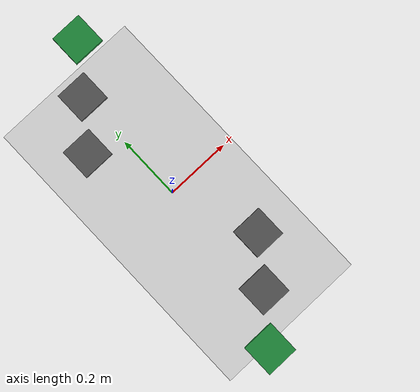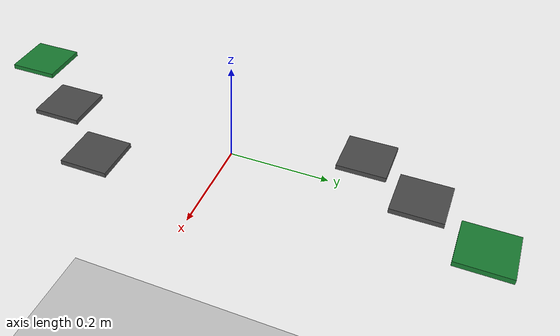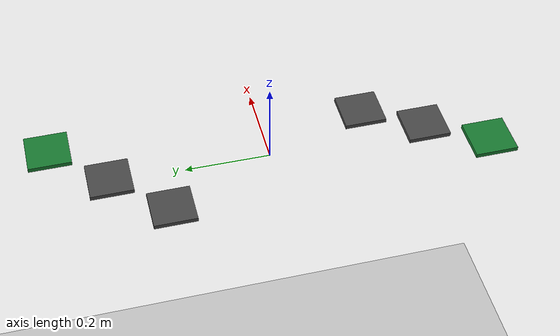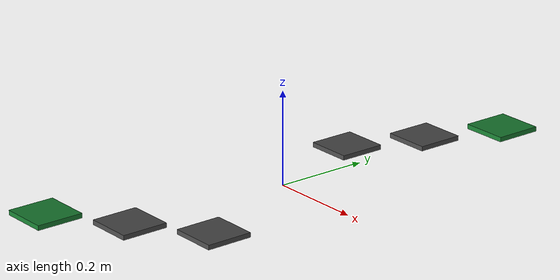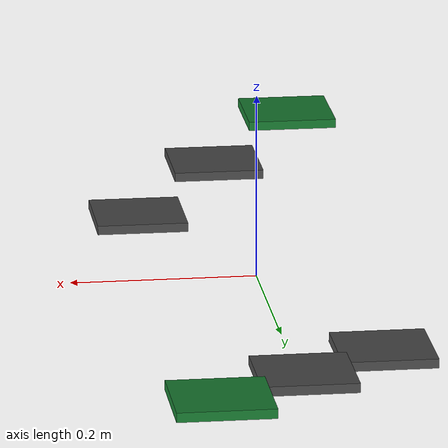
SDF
<?xml version="1.0" ?>
<sdf version="1.4">
  <world name="default">
    <include>
      <uri>model://sun</uri>
    </include>
    <gui>
        <camera name="user_camera">
          <pose>.8 -.2 .9 0 .77 2.86</pose>
        </camera>
    </gui>

    <model name='ground_plane'>
      <pose>0 0 -1 0 0 0</pose>
       <static>1</static>
       <link name='link'>
         <collision name='collision'>
           <geometry>
             <plane>
               <normal>0 0 1</normal>
               <size>100 100</size>
             </plane>
           </geometry>
           <surface>
             <contact>
               <collide_bitmask>65535</collide_bitmask>
               <ode/>
             </contact>
             <friction>
               <ode>
                 <mu>1</mu>
                 <mu2>1</mu2>
               </ode>
               <torsional>
                 <ode/>
               </torsional>
             </friction>
             <bounce/>
           </surface>
           <max_contacts>10</max_contacts>
         </collision>
         <visual name='visual'>
           <cast_shadows>0</cast_shadows>
           <geometry>
             <plane>
               <normal>0 0 1</normal>
               <size>100 100</size>
             </plane>
           </geometry>
           <material>
             <script>
               <uri>file://media/materials/scripts/gazebo.material</uri>
               <name>Gazebo/Grey</name>
             </script>
           </material>
         </visual>
         <self_collide>0</self_collide>
         <enable_wind>0</enable_wind>
         <kinematic>0</kinematic>
       </link>
     </model>

     <model name='obstacles'>
       <link name='obstacle_0'>
         <pose frame=''>0 0 0 0 -0 0</pose>
         <inertial>
           <pose frame=''>0 0 0 0 -0 0</pose>
           <mass>0.3</mass>
           <inertia>
             <ixx>0.001</ixx>
             <ixy>0</ixy>
             <ixz>0</ixz>
             <iyy>0.001</iyy>
             <iyz>0</iyz>
             <izz>0.001</izz>
           </inertia>
         </inertial>
         <gravity>1</gravity>
         <velocity_decay/>
         <self_collide>0</self_collide>
         <enable_wind>0</enable_wind>
         <kinematic>0</kinematic>
         <visual name='obstacle_0_visual'>
           <pose frame=''>-0.1 0.25 -0.005 0 -0 0</pose>
           <geometry>
             <box>
               <size>0.1 0.1 0.01</size>
             </box>
           </geometry>
           <material>
             <script>
               <name>Gazebo/DarkGrey</name>
               <uri>file://media/materials/scripts/gazebo.material</uri>
             </script>
           </material>
           <transparency>0</transparency>
           <cast_shadows>1</cast_shadows>
         </visual>
         <collision name='obstacle_0_collision'>
           <laser_retro>0</laser_retro>
           <max_contacts>10</max_contacts>
           <pose frame=''>-0.1 0.25 -0.005 0 -0 0</pose>
           <geometry>
             <box>
               <size>0.1 0.1 0.01</size>
             </box>
           </geometry>
           <surface>
             <friction>
               <ode>
                 <mu>1</mu>
                 <mu2>1</mu2>
                 <fdir1>0 0 0</fdir1>
                 <slip1>0</slip1>
                 <slip2>0</slip2>
               </ode>
               <torsional>
                 <coefficient>1</coefficient>
                 <patch_radius>0</patch_radius>
                 <surface_radius>0</surface_radius>
                 <use_patch_radius>1</use_patch_radius>
                 <ode>
                   <slip>0</slip>
                 </ode>
               </torsional>
             </friction>
             <bounce>
               <restitution_coefficient>0</restitution_coefficient>
               <threshold>1e+06</threshold>
             </bounce>
             <contact>
               <collide_without_contact>0</collide_without_contact>
               <collide_without_contact_bitmask>1</collide_without_contact_bitmask>
               <collide_bitmask>1</collide_bitmask>
               <ode>
                 <soft_cfm>0</soft_cfm>
                 <soft_erp>0.2</soft_erp>
                 <kp>1e+13</kp>
                 <kd>1</kd>
                 <max_vel>0.01</max_vel>
                 <min_depth>0</min_depth>
               </ode>
               <bullet>
                 <split_impulse>1</split_impulse>
                 <split_impulse_penetration_threshold>-0.01</split_impulse_penetration_threshold>
                 <soft_cfm>0</soft_cfm>
                 <soft_erp>0.2</soft_erp>
                 <kp>1e+13</kp>
                 <kd>1</kd>
               </bullet>
             </contact>
           </surface>
         </collision>
       </link>
       <link name='obstacle_1'>
         <pose frame=''>0 0 0 0 -0 0</pose>
         <inertial>
           <pose frame=''>0 0 0 0 -0 0</pose>
           <mass>0.3</mass>
           <inertia>
             <ixx>0.001</ixx>
             <ixy>0</ixy>
             <ixz>0</ixz>
             <iyy>0.001</iyy>
             <iyz>0</iyz>
             <izz>0.001</izz>
           </inertia>
         </inertial>
         <gravity>1</gravity>
         <velocity_decay/>
         <self_collide>0</self_collide>
         <enable_wind>0</enable_wind>
         <kinematic>0</kinematic>
         <visual name='obstacle_1_visual'>
           <pose frame=''>0 0.375 0.015 0 -0 0</pose>
           <geometry>
             <box>
               <size>0.1 0.1 0.01</size>
             </box>
           </geometry>
           <material>
             <script>
               <name>Gazebo/DarkGrey</name>
               <uri>file://media/materials/scripts/gazebo.material</uri>
             </script>
           </material>
           <transparency>0</transparency>
           <cast_shadows>1</cast_shadows>
         </visual>
         <collision name='obstacle_1_collision'>
           <laser_retro>0</laser_retro>
           <max_contacts>10</max_contacts>
           <pose frame=''>0 0.375 0.015 0 -0 0</pose>
           <geometry>
             <box>
               <size>0.1 0.1 0.01</size>
             </box>
           </geometry>
           <surface>
             <friction>
               <ode>
                 <mu>1</mu>
                 <mu2>1</mu2>
                 <fdir1>0 0 0</fdir1>
                 <slip1>0</slip1>
                 <slip2>0</slip2>
               </ode>
               <torsional>
                 <coefficient>1</coefficient>
                 <patch_radius>0</patch_radius>
                 <surface_radius>0</surface_radius>
                 <use_patch_radius>1</use_patch_radius>
                 <ode>
                   <slip>0</slip>
                 </ode>
               </torsional>
             </friction>
             <bounce>
               <restitution_coefficient>0</restitution_coefficient>
               <threshold>1e+06</threshold>
             </bounce>
             <contact>
               <collide_without_contact>0</collide_without_contact>
               <collide_without_contact_bitmask>1</collide_without_contact_bitmask>
               <collide_bitmask>1</collide_bitmask>
               <ode>
                 <soft_cfm>0</soft_cfm>
                 <soft_erp>0.2</soft_erp>
                 <kp>1e+13</kp>
                 <kd>1</kd>
                 <max_vel>0.01</max_vel>
                 <min_depth>0</min_depth>
               </ode>
               <bullet>
                 <split_impulse>1</split_impulse>
                 <split_impulse_penetration_threshold>-0.01</split_impulse_penetration_threshold>
                 <soft_cfm>0</soft_cfm>
                 <soft_erp>0.2</soft_erp>
                 <kp>1e+13</kp>
                 <kd>1</kd>
               </bullet>
             </contact>
           </surface>
         </collision>
       </link>
       <link name='obstacle_2'>
         <pose frame=''>0 0 0 0 -0 0</pose>
         <inertial>
           <pose frame=''>0 0 0 0 -0 0</pose>
           <mass>0.3</mass>
           <inertia>
             <ixx>0.001</ixx>
             <ixy>0</ixy>
             <ixz>0</ixz>
             <iyy>0.001</iyy>
             <iyz>0</iyz>
             <izz>0.001</izz>
           </inertia>
         </inertial>
         <gravity>1</gravity>
         <velocity_decay/>
         <self_collide>0</self_collide>
         <enable_wind>0</enable_wind>
         <kinematic>0</kinematic>
         <visual name='obstacle_2_visual'>
           <pose frame=''>0.1 0.5 0.035 0 -0 0</pose>
           <geometry>
             <box>
               <size>0.1 0.1 0.01</size>
             </box>
           </geometry>
           <material>
             <ambient>0.1 0.5 0.1 1</ambient>
             <diffuse>0.1 0.5 0.2 1</diffuse>
             <specular>0 0 0 0</specular>
             <emissive>0 0 0 1</emissive>
           </material>
           <transparency>0</transparency>
           <cast_shadows>1</cast_shadows>
         </visual>
         <collision name='obstacle_2_collision'>
           <laser_retro>0</laser_retro>
           <max_contacts>10</max_contacts>
           <pose frame=''>0.1 0.5 0.035 0 -0 0</pose>
           <geometry>
             <box>
               <size>0.1 0.1 0.01</size>
             </box>
           </geometry>
           <surface>
             <friction>
               <ode>
                 <mu>1</mu>
                 <mu2>1</mu2>
                 <fdir1>0 0 0</fdir1>
                 <slip1>0</slip1>
                 <slip2>0</slip2>
               </ode>
               <torsional>
                 <coefficient>1</coefficient>
                 <patch_radius>0</patch_radius>
                 <surface_radius>0</surface_radius>
                 <use_patch_radius>1</use_patch_radius>
                 <ode>
                   <slip>0</slip>
                 </ode>
               </torsional>
             </friction>
             <bounce>
               <restitution_coefficient>0</restitution_coefficient>
               <threshold>1e+06</threshold>
             </bounce>
             <contact>
               <collide_without_contact>0</collide_without_contact>
               <collide_without_contact_bitmask>1</collide_without_contact_bitmask>
               <collide_bitmask>1</collide_bitmask>
               <ode>
                 <soft_cfm>0</soft_cfm>
                 <soft_erp>0.2</soft_erp>
                 <kp>1e+13</kp>
                 <kd>1</kd>
                 <max_vel>0.01</max_vel>
                 <min_depth>0</min_depth>
               </ode>
               <bullet>
                 <split_impulse>1</split_impulse>
                 <split_impulse_penetration_threshold>-0.01</split_impulse_penetration_threshold>
                 <soft_cfm>0</soft_cfm>
                 <soft_erp>0.2</soft_erp>
                 <kp>1e+13</kp>
                 <kd>1</kd>
               </bullet>
             </contact>
           </surface>
         </collision>
       </link>
       <link name='obstacle_3'>
         <pose frame=''>0 0 0 0 -0 0</pose>
         <inertial>
           <pose frame=''>0 0 0 0 -0 0</pose>
           <mass>0.3</mass>
           <inertia>
             <ixx>0.001</ixx>
             <ixy>0</ixy>
             <ixz>0</ixz>
             <iyy>0.001</iyy>
             <iyz>0</iyz>
             <izz>0.001</izz>
           </inertia>
         </inertial>
         <gravity>1</gravity>
         <velocity_decay/>
         <self_collide>0</self_collide>
         <enable_wind>0</enable_wind>
         <kinematic>0</kinematic>
         <visual name='obstacle_3_visual'>
           <pose frame=''>0.1 -0.25 -0.005 0 -0 0</pose>
           <geometry>
             <box>
               <size>0.1 0.1 0.01</size>
             </box>
           </geometry>
           <material>
             <script>
               <name>Gazebo/DarkGrey</name>
               <uri>file://media/materials/scripts/gazebo.material</uri>
             </script>
           </material>
           <transparency>0</transparency>
           <cast_shadows>1</cast_shadows>
         </visual>
         <collision name='obstacle_3_collision'>
           <laser_retro>0</laser_retro>
           <max_contacts>10</max_contacts>
           <pose frame=''>0.1 -0.25 -0.005 0 -0 0</pose>
           <geometry>
             <box>
               <size>0.1 0.1 0.01</size>
             </box>
           </geometry>
           <surface>
             <friction>
               <ode>
                 <mu>1</mu>
                 <mu2>1</mu2>
                 <fdir1>0 0 0</fdir1>
                 <slip1>0</slip1>
                 <slip2>0</slip2>
               </ode>
               <torsional>
                 <coefficient>1</coefficient>
                 <patch_radius>0</patch_radius>
                 <surface_radius>0</surface_radius>
                 <use_patch_radius>1</use_patch_radius>
                 <ode>
                   <slip>0</slip>
                 </ode>
               </torsional>
             </friction>
             <bounce>
               <restitution_coefficient>0</restitution_coefficient>
               <threshold>1e+06</threshold>
             </bounce>
             <contact>
               <collide_without_contact>0</collide_without_contact>
               <collide_without_contact_bitmask>1</collide_without_contact_bitmask>
               <collide_bitmask>1</collide_bitmask>
               <ode>
                 <soft_cfm>0</soft_cfm>
                 <soft_erp>0.2</soft_erp>
                 <kp>1e+13</kp>
                 <kd>1</kd>
                 <max_vel>0.01</max_vel>
                 <min_depth>0</min_depth>
               </ode>
               <bullet>
                 <split_impulse>1</split_impulse>
                 <split_impulse_penetration_threshold>-0.01</split_impulse_penetration_threshold>
                 <soft_cfm>0</soft_cfm>
                 <soft_erp>0.2</soft_erp>
                 <kp>1e+13</kp>
                 <kd>1</kd>
               </bullet>
             </contact>
           </surface>
         </collision>
       </link>
       <link name='obstacle_4'>
         <pose frame=''>0 0 0 0 -0 0</pose>
         <inertial>
           <pose frame=''>0 0 0 0 -0 0</pose>
           <mass>0.3</mass>
           <inertia>
             <ixx>0.001</ixx>
             <ixy>0</ixy>
             <ixz>0</ixz>
             <iyy>0.001</iyy>
             <iyz>0</iyz>
             <izz>0.001</izz>
           </inertia>
         </inertial>
         <gravity>1</gravity>
         <velocity_decay/>
         <self_collide>0</self_collide>
         <enable_wind>0</enable_wind>
         <kinematic>0</kinematic>
         <visual name='obstacle_4_visual'>
           <pose frame=''>0 -0.375 0.015 0 -0 0</pose>
           <geometry>
             <box>
               <size>0.1 0.1 0.01</size>
             </box>
           </geometry>
           <material>
             <script>
               <name>Gazebo/DarkGrey</name>
               <uri>file://media/materials/scripts/gazebo.material</uri>
             </script>
           </material>
           <transparency>0</transparency>
           <cast_shadows>1</cast_shadows>
         </visual>
         <collision name='obstacle_4_collision'>
           <laser_retro>0</laser_retro>
           <max_contacts>10</max_contacts>
           <pose frame=''>0 -0.375 0.015 0 -0 0</pose>
           <geometry>
             <box>
               <size>0.1 0.1 0.01</size>
             </box>
           </geometry>
           <surface>
             <friction>
               <ode>
                 <mu>1</mu>
                 <mu2>1</mu2>
                 <fdir1>0 0 0</fdir1>
                 <slip1>0</slip1>
                 <slip2>0</slip2>
               </ode>
               <torsional>
                 <coefficient>1</coefficient>
                 <patch_radius>0</patch_radius>
                 <surface_radius>0</surface_radius>
                 <use_patch_radius>1</use_patch_radius>
                 <ode>
                   <slip>0</slip>
                 </ode>
               </torsional>
             </friction>
             <bounce>
               <restitution_coefficient>0</restitution_coefficient>
               <threshold>1e+06</threshold>
             </bounce>
             <contact>
               <collide_without_contact>0</collide_without_contact>
               <collide_without_contact_bitmask>1</collide_without_contact_bitmask>
               <collide_bitmask>1</collide_bitmask>
               <ode>
                 <soft_cfm>0</soft_cfm>
                 <soft_erp>0.2</soft_erp>
                 <kp>1e+13</kp>
                 <kd>1</kd>
                 <max_vel>0.01</max_vel>
                 <min_depth>0</min_depth>
               </ode>
               <bullet>
                 <split_impulse>1</split_impulse>
                 <split_impulse_penetration_threshold>-0.01</split_impulse_penetration_threshold>
                 <soft_cfm>0</soft_cfm>
                 <soft_erp>0.2</soft_erp>
                 <kp>1e+13</kp>
                 <kd>1</kd>
               </bullet>
             </contact>
           </surface>
         </collision>
       </link>
       <link name='obstacle_5'>
         <pose frame=''>0 0 0 0 -0 0</pose>
         <inertial>
           <pose frame=''>0 0 0 0 -0 0</pose>
           <mass>0.3</mass>
           <inertia>
             <ixx>0.001</ixx>
             <ixy>0</ixy>
             <ixz>0</ixz>
             <iyy>0.001</iyy>
             <iyz>0</iyz>
             <izz>0.001</izz>
           </inertia>
         </inertial>
         <gravity>1</gravity>
         <velocity_decay/>
         <self_collide>0</self_collide>
         <enable_wind>0</enable_wind>
         <kinematic>0</kinematic>
         <visual name='obstacle_5_visual'>
           <pose frame=''>-0.1 -0.5 0.035 0 -0 0</pose>
           <geometry>
             <box>
               <size>0.1 0.1 0.01</size>
             </box>
           </geometry>
           <material>
             <ambient>0.1 0.5 0.1 1</ambient>
             <diffuse>0.1 0.5 0.2 1</diffuse>
             <specular>0 0 0 0</specular>
             <emissive>0 0 0 1</emissive>
           </material>
           <transparency>0</transparency>
           <cast_shadows>1</cast_shadows>
         </visual>
         <collision name='obstacle_5_collision'>
           <laser_retro>0</laser_retro>
           <max_contacts>10</max_contacts>
           <pose frame=''>-0.1 -0.5 0.035 0 -0 0</pose>
           <geometry>
             <box>
               <size>0.1 0.1 0.01</size>
             </box>
           </geometry>
           <surface>
             <friction>
               <ode>
                 <mu>1</mu>
                 <mu2>1</mu2>
                 <fdir1>0 0 0</fdir1>
                 <slip1>0</slip1>
                 <slip2>0</slip2>
               </ode>
               <torsional>
                 <coefficient>1</coefficient>
                 <patch_radius>0</patch_radius>
                 <surface_radius>0</surface_radius>
                 <use_patch_radius>1</use_patch_radius>
                 <ode>
                   <slip>0</slip>
                 </ode>
               </torsional>
             </friction>
             <bounce>
               <restitution_coefficient>0</restitution_coefficient>
               <threshold>1e+06</threshold>
             </bounce>
             <contact>
               <collide_without_contact>0</collide_without_contact>
               <collide_without_contact_bitmask>1</collide_without_contact_bitmask>
               <collide_bitmask>1</collide_bitmask>
               <ode>
                 <soft_cfm>0</soft_cfm>
                 <soft_erp>0.2</soft_erp>
                 <kp>1e+13</kp>
                 <kd>1</kd>
                 <max_vel>0.01</max_vel>
                 <min_depth>0</min_depth>
               </ode>
               <bullet>
                 <split_impulse>1</split_impulse>
                 <split_impulse_penetration_threshold>-0.01</split_impulse_penetration_threshold>
                 <soft_cfm>0</soft_cfm>
                 <soft_erp>0.2</soft_erp>
                 <kp>1e+13</kp>
                 <kd>1</kd>
               </bullet>
             </contact>
           </surface>
         </collision>
       </link>
       <static>1</static>
       <allow_auto_disable>1</allow_auto_disable>
     </model>

  </world>
</sdf>
